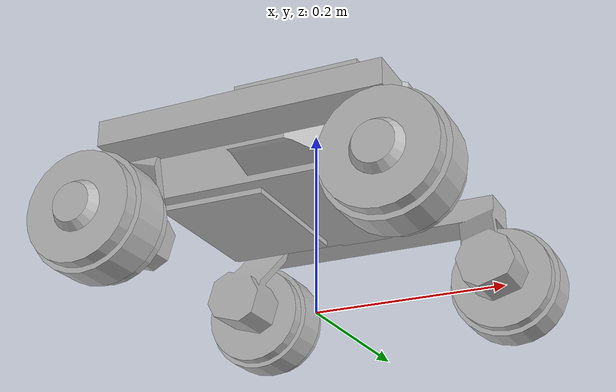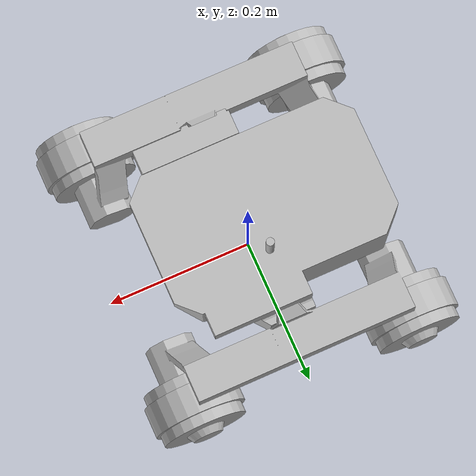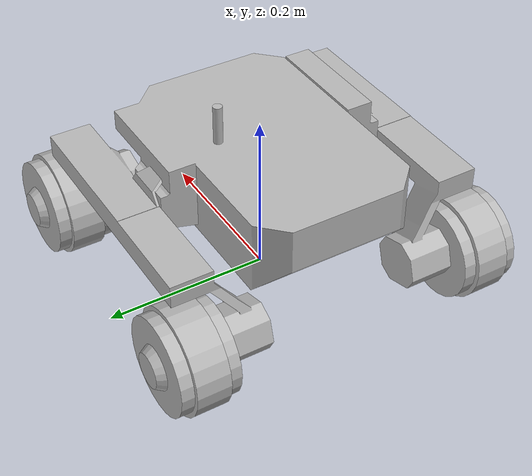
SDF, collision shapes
<sdf version='1.9'>
  <model name='leo_sim'>
    <link name='base_footprint'>
      <inertial>
        <pose>-0.01965072201211552 0.01167759118438614 0.1660702125213793 0 0 0</pose>
        <mass>1.5862309999999999</mass>
        <inertia>
          <ixx>0.01042630889712674</ixx>
          <ixy>0.001176207094533427</ixy>
          <ixz>-0.00088806760314957389</ixz>
          <iyy>0.01045413545998981</iyy>
          <iyz>0.00021963222424937429</iyz>
          <izz>0.018172704009346379</izz>
        </inertia>
      </inertial>
      <collision name='base_footprint_fixed_joint_lump__base_link_collision'>
        <pose>0 0 0.19783 0 0 0</pose>
        <geometry>
          <mesh>
            <scale>1 1 1</scale>
            <uri>model://leo_description/models/Chassis_outline.stl</uri>
          </mesh>
        </geometry>
        <surface>
          <friction>
            <ode>
              <mu>0.29999999999999999</mu>
              <mu2>0.29999999999999999</mu2>
            </ode>
            <bullet>
              <friction>0.29999999999999999</friction>
              <friction2>0.29999999999999999</friction2>
              <rolling_friction>0.10000000000000001</rolling_friction>
            </bullet>
          </friction>
          <contact>
            <ode/>
          </contact>
        </surface>
      </collision>
      <collision name='base_footprint_fixed_joint_lump__antenna_link_collision_1'>
        <pose>-0.0052 0.056 0.21933 0 0 0</pose>
        <geometry>
          <cylinder>
            <length>0.056000000000000001</length>
            <radius>0.0054999999999999997</radius>
          </cylinder>
        </geometry>
      </collision>
      <visual name='base_footprint_fixed_joint_lump__base_link_visual'>
        <pose>0 0 0.19783 0 0 0</pose>
        <geometry>
          <mesh>
            <scale>1 1 1</scale>
            <uri>model://leo_description/models/Chassis.dae</uri>
          </mesh>
        </geometry>
      </visual>
      <visual name='base_footprint_fixed_joint_lump__antenna_link_visual_1'>
        <pose>-0.0052 0.056 0.19133 0 0 0</pose>
        <geometry>
          <mesh>
            <scale>1 1 1</scale>
            <uri>model://leo_description/models/Antenna.dae</uri>
          </mesh>
        </geometry>
      </visual>
      <sensor name='camera' type='camera'>
        <camera name='leo_camera'>
          <horizontal_fov>1.1</horizontal_fov>
          <image>
            <width>640</width>
            <height>480</height>
            <format>R8G8B8</format>
          </image>
          <clip>
            <near>0.050000000000000003</near>
            <far>100</far>
          </clip>
          <noise>
            <type>gaussian</type>
            <mean>0</mean>
            <stddev>0.0070000000000000001</stddev>
          </noise>
          <distortion>
            <k1>-0.27981699999999998</k1>
            <k2>0.060321</k2>
            <k3>0.00048700000000000002</k3>
            <p1>0.00031</p1>
            <p2>0</p2>
            <center>0.5 0.5</center>
          </distortion>
        </camera>
        <always_on>true</always_on>
        <update_rate>30</update_rate>
        <visualize>true</visualize>
        <topic>camera/image_raw</topic>
        <pose>0.1  0 0.2313 0 0 0</pose>
        <ignition_frame_id>camera_optical_frame</ignition_frame_id>
      </sensor>
      <sensor name='leo_imu_sensor' type='imu'>
        <update_rate>100</update_rate>
        <visualize>true</visualize>
        <topic>imu/data_raw</topic>
        <always_on>true</always_on>
        <pose>0.0628 -0.0314 0.15853 0 -0 0</pose>
        <ignition_frame_id>imu_frame</ignition_frame_id>
      </sensor>
    </link>
    <joint name='rocker_L_joint' type='revolute'>
      <pose relative_to='base_footprint'>0.00263 0.14167 0.15052 0 0 3.141592653589793</pose>
      <parent>base_footprint</parent>
      <child>rocker_L_link</child>
      <axis>
        <xyz>0 1 0</xyz>
        <limit>
          <lower>-0.23999999999999999</lower>
          <upper>0.23999999999999999</upper>
          <effort>100</effort>
          <velocity>100</velocity>
        </limit>
        <dynamics>
          <damping>0.10000000000000001</damping>
          <friction>1</friction>
          <spring_reference>0</spring_reference>
          <spring_stiffness>0</spring_stiffness>
        </dynamics>
      </axis>
    </joint>
    <link name='rocker_L_link'>
      <pose relative_to='rocker_L_joint'>0 0 0 0 0 0</pose>
      <inertial>
        <pose>0 0.01346 -0.06506000000000001 0 0 0</pose>
        <mass>1.3873359999999999</mass>
        <inertia>
          <ixx>0.0029559999999999999</ixx>
          <ixy>-1.4893239999999999e-06</ixy>
          <ixz>-8.1034070000000002e-06</ixz>
          <iyy>0.029239999999999999</iyy>
          <iyz>7.1119999999999997e-05</iyz>
          <izz>0.028320000000000001</izz>
        </inertia>
      </inertial>
      <collision name='rocker_L_link_collision'>
        <pose>0 0 0 0 0 0</pose>
        <geometry>
          <mesh>
            <scale>1 1 1</scale>
            <uri>model://leo_description/models/Rocker_outline.stl</uri>
          </mesh>
        </geometry>
        <surface>
          <friction>
            <ode>
              <mu>0.29999999999999999</mu>
              <mu2>0.29999999999999999</mu2>
            </ode>
            <bullet>
              <friction>0.29999999999999999</friction>
              <friction2>0.29999999999999999</friction2>
              <rolling_friction>0.10000000000000001</rolling_friction>
            </bullet>
          </friction>
          <contact>
            <ode/>
          </contact>
        </surface>
      </collision>
      <visual name='rocker_L_link_visual'>
        <pose>0 0 0 0 0 0</pose>
        <geometry>
          <mesh>
            <scale>1 1 1</scale>
            <uri>model://leo_description/models/Rocker.dae</uri>
          </mesh>
        </geometry>
      </visual>
    </link>
    <joint name='wheel_FL_joint' type='revolute'>
      <pose relative_to='rocker_L_link'>-0.15256 -0.08214 -0.08802 0 0 0</pose>
      <parent>rocker_L_link</parent>
      <child>wheel_FL_link</child>
      <axis>
        <xyz>0 -1 0</xyz>
        <limit>
          <effort>2</effort>
          <velocity>6</velocity>
          <lower>-10000000000000000</lower>
          <upper>10000000000000000</upper>
        </limit>
        <dynamics>
          <damping>0.10000000000000001</damping>
          <friction>0.3125</friction>
          <spring_reference>0</spring_reference>
          <spring_stiffness>0</spring_stiffness>
        </dynamics>
      </axis>
    </joint>
    <link name='wheel_FL_link'>
      <pose relative_to='wheel_FL_joint'>0 0 0 0 0 0</pose>
      <inertial>
        <pose>0 0.030026 0 0 0 0</pose>
        <mass>0.28364200000000001</mass>
        <inertia>
          <ixx>0.00039100000000000002</ixx>
          <ixy>1.2396200000000001e-06</ixy>
          <ixz>5.5258200000000004e-07</ixz>
          <iyy>0.00047160000000000002</iyy>
          <iyz>-2.082042e-06</iyz>
          <izz>0.00039100000000000002</izz>
        </inertia>
      </inertial>
      <collision name='wheel_FL_link_collision'>
        <pose>0 0.04485 0 1.570796326794896 0 0</pose>
        <geometry>
          <cylinder>
            <length>0.070000000000000007</length>
            <radius>0.057000000000000002</radius>
          </cylinder>
        </geometry>
        <surface>
          <friction>
            <ode>
              <mu>3</mu>
              <mu2>3</mu2>
              <slip1>0.035000000000000003</slip1>
              <slip2>0</slip2>
              <fdir1>0 0 1</fdir1>
            </ode>
            <bullet>
              <friction>1</friction>
              <friction2>1</friction2>
              <rolling_friction>0.10000000000000001</rolling_friction>
            </bullet>
          </friction>
          <contact>
            <ode/>
          </contact>
        </surface>
      </collision>
      <collision name='wheel_FL_link_collision_1'>
        <pose>0 0.04485 0 1.570796326794896 0 0</pose>
        <geometry>
          <cylinder>
            <length>0.040000000000000001</length>
            <radius>0.0625</radius>
          </cylinder>
        </geometry>
        <surface>
          <friction>
            <ode>
              <mu>3</mu>
              <mu2>3</mu2>
              <slip1>0.035000000000000003</slip1>
              <slip2>0</slip2>
              <fdir1>0 0 1</fdir1>
            </ode>
            <bullet>
              <friction>1</friction>
              <friction2>1</friction2>
              <rolling_friction>0.10000000000000001</rolling_friction>
            </bullet>
          </friction>
          <contact>
            <ode/>
          </contact>
        </surface>
      </collision>
      <collision name='wheel_FL_link_collision_2'>
        <pose>0 0 0 0 0 0</pose>
        <geometry>
          <mesh>
            <scale>1 1 1</scale>
            <uri>model://leo_description/models/Wheel_outline.stl</uri>
          </mesh>
        </geometry>
        <surface>
          <friction>
            <ode>
              <mu>2</mu>
              <mu2>2</mu2>
              <slip1>0.035000000000000003</slip1>
              <slip2>0</slip2>
              <fdir1>0 0 1</fdir1>
            </ode>
            <bullet>
              <friction>1</friction>
              <friction2>1</friction2>
              <rolling_friction>0.10000000000000001</rolling_friction>
            </bullet>
          </friction>
          <contact>
            <ode/>
          </contact>
        </surface>
      </collision>
      <visual name='wheel_FL_link_visual'>
        <pose>0 0 0 0 0 0</pose>
        <geometry>
          <mesh>
            <scale>1 1 1</scale>
            <uri>model://leo_description/models/WheelA.dae</uri>
          </mesh>
        </geometry>
      </visual>
    </link>
    <joint name='wheel_RL_joint' type='revolute'>
      <pose relative_to='rocker_L_link'>0.15256 -0.08214 -0.08802 0 0 0</pose>
      <parent>rocker_L_link</parent>
      <child>wheel_RL_link</child>
      <axis>
        <xyz>0 -1 0</xyz>
        <limit>
          <effort>2</effort>
          <velocity>6</velocity>
          <lower>-10000000000000000</lower>
          <upper>10000000000000000</upper>
        </limit>
        <dynamics>
          <damping>0.10000000000000001</damping>
          <friction>0.3125</friction>
          <spring_reference>0</spring_reference>
          <spring_stiffness>0</spring_stiffness>
        </dynamics>
      </axis>
    </joint>
    <link name='wheel_RL_link'>
      <pose relative_to='wheel_RL_joint'>0 0 0 0 0 0</pose>
      <inertial>
        <pose>0 0.030026 0 0 0 0</pose>
        <mass>0.28364200000000001</mass>
        <inertia>
          <ixx>0.00039100000000000002</ixx>
          <ixy>1.2396200000000001e-06</ixy>
          <ixz>5.5258200000000004e-07</ixz>
          <iyy>0.00047160000000000002</iyy>
          <iyz>-2.082042e-06</iyz>
          <izz>0.00039100000000000002</izz>
        </inertia>
      </inertial>
      <collision name='wheel_RL_link_collision'>
        <pose>0 0.04485 0 1.570796326794896 0 0</pose>
        <geometry>
          <cylinder>
            <length>0.070000000000000007</length>
            <radius>0.057000000000000002</radius>
          </cylinder>
        </geometry>
        <surface>
          <friction>
            <ode>
              <mu>3</mu>
              <mu2>3</mu2>
              <slip1>0.035000000000000003</slip1>
              <slip2>0</slip2>
              <fdir1>0 0 1</fdir1>
            </ode>
            <bullet>
              <friction>1</friction>
              <friction2>1</friction2>
              <rolling_friction>0.10000000000000001</rolling_friction>
            </bullet>
          </friction>
          <contact>
            <ode/>
          </contact>
        </surface>
      </collision>
      <collision name='wheel_RL_link_collision_1'>
        <pose>0 0.04485 0 1.570796326794896 0 0</pose>
        <geometry>
          <cylinder>
            <length>0.040000000000000001</length>
            <radius>0.0625</radius>
          </cylinder>
        </geometry>
        <surface>
          <friction>
            <ode>
              <mu>3</mu>
              <mu2>3</mu2>
              <slip1>0.035000000000000003</slip1>
              <slip2>0</slip2>
              <fdir1>0 0 1</fdir1>
            </ode>
            <bullet>
              <friction>1</friction>
              <friction2>1</friction2>
              <rolling_friction>0.10000000000000001</rolling_friction>
            </bullet>
          </friction>
          <contact>
            <ode/>
          </contact>
        </surface>
      </collision>
      <collision name='wheel_RL_link_collision_2'>
        <pose>0 0 0 0 0 0</pose>
        <geometry>
          <mesh>
            <scale>1 1 1</scale>
            <uri>model://leo_description/models/Wheel_outline.stl</uri>
          </mesh>
        </geometry>
        <surface>
          <friction>
            <ode>
              <mu>3</mu>
              <mu2>3</mu2>
              <slip1>0.035000000000000003</slip1>
              <slip2>0</slip2>
              <fdir1>0 0 1</fdir1>
            </ode>
            <bullet>
              <friction>1</friction>
              <friction2>1</friction2>
              <rolling_friction>0.10000000000000001</rolling_friction>
            </bullet>
          </friction>
          <contact>
            <ode/>
          </contact>
        </surface>
      </collision>
      <visual name='wheel_RL_link_visual'>
        <pose>0 0 0 0 0 0</pose>
        <geometry>
          <mesh>
            <scale>1 1 1</scale>
            <uri>model://leo_description/models/WheelA.dae</uri>
          </mesh>
        </geometry>
      </visual>
    </link>
    <joint name='rocker_R_joint' type='revolute'>
      <pose relative_to='base_footprint'>0.00263 -0.14167 0.15052 0 0 0</pose>
      <parent>base_footprint</parent>
      <child>rocker_R_link</child>
      <axis>
        <xyz>0 1 0</xyz>
        <limit>
          <lower>-0.23999999999999999</lower>
          <upper>0.23999999999999999</upper>
          <effort>100</effort>
          <velocity>100</velocity>
        </limit>
        <dynamics>
          <damping>0.10000000000000001</damping>
          <friction>1</friction>
          <spring_reference>0</spring_reference>
          <spring_stiffness>0</spring_stiffness>
        </dynamics>
      </axis>
    </joint>
    <link name='rocker_R_link'>
      <pose relative_to='rocker_R_joint'>0 0 0 0 0 0</pose>
      <inertial>
        <pose>0 0.01346 -0.06506000000000001 0 0 0</pose>
        <mass>1.3873359999999999</mass>
        <inertia>
          <ixx>0.0029559999999999999</ixx>
          <ixy>-1.4893239999999999e-06</ixy>
          <ixz>-8.1034070000000002e-06</ixz>
          <iyy>0.029239999999999999</iyy>
          <iyz>7.1119999999999997e-05</iyz>
          <izz>0.028320000000000001</izz>
        </inertia>
      </inertial>
      <collision name='rocker_R_link_collision'>
        <pose>0 0 0 0 0 0</pose>
        <geometry>
          <mesh>
            <scale>1 1 1</scale>
            <uri>model://leo_description/models/Rocker_outline.stl</uri>
          </mesh>
        </geometry>
        <surface>
          <friction>
            <ode>
              <mu>0.29999999999999999</mu>
              <mu2>0.29999999999999999</mu2>
            </ode>
            <bullet>
              <friction>0.29999999999999999</friction>
              <friction2>0.29999999999999999</friction2>
              <rolling_friction>0.10000000000000001</rolling_friction>
            </bullet>
          </friction>
          <contact>
            <ode/>
          </contact>
        </surface>
      </collision>
      <visual name='rocker_R_link_visual'>
        <pose>0 0 0 0 0 0</pose>
        <geometry>
          <mesh>
            <scale>1 1 1</scale>
            <uri>model://leo_description/models/Rocker.dae</uri>
          </mesh>
        </geometry>
      </visual>
    </link>
    <joint name='wheel_FR_joint' type='revolute'>
      <pose relative_to='rocker_R_link'>0.15256 -0.08214 -0.08802 0 0 0</pose>
      <parent>rocker_R_link</parent>
      <child>wheel_FR_link</child>
      <axis>
        <xyz>0 1 0</xyz>
        <limit>
          <effort>2</effort>
          <velocity>6</velocity>
          <lower>-10000000000000000</lower>
          <upper>10000000000000000</upper>
        </limit>
        <dynamics>
          <damping>0.10000000000000001</damping>
          <friction>0.3125</friction>
          <spring_reference>0</spring_reference>
          <spring_stiffness>0</spring_stiffness>
        </dynamics>
      </axis>
    </joint>
    <link name='wheel_FR_link'>
      <pose relative_to='wheel_FR_joint'>0 0 0 0 0 0</pose>
      <inertial>
        <pose>0 0.030026 0 0 0 0</pose>
        <mass>0.28364200000000001</mass>
        <inertia>
          <ixx>0.00039100000000000002</ixx>
          <ixy>1.2396200000000001e-06</ixy>
          <ixz>5.5258200000000004e-07</ixz>
          <iyy>0.00047160000000000002</iyy>
          <iyz>-2.082042e-06</iyz>
          <izz>0.00039100000000000002</izz>
        </inertia>
      </inertial>
      <collision name='wheel_FR_link_collision'>
        <pose>0 0.04485 0 1.570796326794896 0 0</pose>
        <geometry>
          <cylinder>
            <length>0.070000000000000007</length>
            <radius>0.057000000000000002</radius>
          </cylinder>
        </geometry>
        <surface>
          <friction>
            <ode>
              <mu>3</mu>
              <mu2>3</mu2>
              <slip1>0.035000000000000003</slip1>
              <slip2>0</slip2>
              <fdir1>0 0 1</fdir1>
            </ode>
            <bullet>
              <friction>1</friction>
              <friction2>1</friction2>
              <rolling_friction>0.10000000000000001</rolling_friction>
            </bullet>
          </friction>
          <contact>
            <ode/>
          </contact>
        </surface>
      </collision>
      <collision name='wheel_FR_link_collision_1'>
        <pose>0 0.04485 0 1.570796326794896 0 0</pose>
        <geometry>
          <cylinder>
            <length>0.040000000000000001</length>
            <radius>0.0625</radius>
          </cylinder>
        </geometry>
        <surface>
          <friction>
            <ode>
              <mu>3</mu>
              <mu2>3</mu2>
              <slip1>0.035000000000000003</slip1>
              <slip2>0</slip2>
              <fdir1>0 0 1</fdir1>
            </ode>
            <bullet>
              <friction>1</friction>
              <friction2>1</friction2>
              <rolling_friction>0.10000000000000001</rolling_friction>
            </bullet>
          </friction>
          <contact>
            <ode/>
          </contact>
        </surface>
      </collision>
      <collision name='wheel_FR_link_collision_2'>
        <pose>0 0 0 0 0 0</pose>
        <geometry>
          <mesh>
            <scale>1 1 1</scale>
            <uri>model://leo_description/models/Wheel_outline.stl</uri>
          </mesh>
        </geometry>
        <surface>
          <friction>
            <ode>
              <mu>3</mu>
              <mu2>3</mu2>
              <slip1>0.035000000000000003</slip1>
              <slip2>0</slip2>
              <fdir1>0 0 1</fdir1>
            </ode>
            <bullet>
              <friction>1</friction>
              <friction2>1</friction2>
              <rolling_friction>0.10000000000000001</rolling_friction>
            </bullet>
          </friction>
          <contact>
            <ode/>
          </contact>
        </surface>
      </collision>
      <visual name='wheel_FR_link_visual'>
        <pose>0 0 0 0 0 0</pose>
        <geometry>
          <mesh>
            <scale>1 1 1</scale>
            <uri>model://leo_description/models/WheelB.dae</uri>
          </mesh>
        </geometry>
      </visual>
    </link>
    <joint name='wheel_RR_joint' type='revolute'>
      <pose relative_to='rocker_R_link'>-0.15256 -0.08214 -0.08802 0 0 0</pose>
      <parent>rocker_R_link</parent>
      <child>wheel_RR_link</child>
      <axis>
        <xyz>0 1 0</xyz>
        <limit>
          <effort>2</effort>
          <velocity>6</velocity>
          <lower>-10000000000000000</lower>
          <upper>10000000000000000</upper>
        </limit>
        <dynamics>
          <damping>0.10000000000000001</damping>
          <friction>0.3125</friction>
          <spring_reference>0</spring_reference>
          <spring_stiffness>0</spring_stiffness>
        </dynamics>
      </axis>
    </joint>
    <link name='wheel_RR_link'>
      <pose relative_to='wheel_RR_joint'>0 0 0 0 0 0</pose>
      <inertial>
        <pose>0 0.030026 0 0 0 0</pose>
        <mass>0.28364200000000001</mass>
        <inertia>
          <ixx>0.00039100000000000002</ixx>
          <ixy>1.2396200000000001e-06</ixy>
          <ixz>5.5258200000000004e-07</ixz>
          <iyy>0.00047160000000000002</iyy>
          <iyz>-2.082042e-06</iyz>
          <izz>0.00039100000000000002</izz>
        </inertia>
      </inertial>
      <collision name='wheel_RR_link_collision'>
        <pose>0 0.04485 0 1.570796326794896 0 0</pose>
        <geometry>
          <cylinder>
            <length>0.070000000000000007</length>
            <radius>0.057000000000000002</radius>
          </cylinder>
        </geometry>
        <surface>
          <friction>
            <ode>
              <mu>3</mu>
              <mu2>3</mu2>
              <slip1>0.035000000000000003</slip1>
              <slip2>0</slip2>
              <fdir1>0 0 1</fdir1>
            </ode>
            <bullet>
              <friction>1</friction>
              <friction2>1</friction2>
              <rolling_friction>0.10000000000000001</rolling_friction>
            </bullet>
          </friction>
          <contact>
            <ode/>
          </contact>
        </surface>
      </collision>
      <collision name='wheel_RR_link_collision_1'>
        <pose>0 0.04485 0 1.570796326794896 0 0</pose>
        <geometry>
          <cylinder>
            <length>0.040000000000000001</length>
            <radius>0.0625</radius>
          </cylinder>
        </geometry>
        <surface>
          <friction>
            <ode>
              <mu>3</mu>
              <mu2>3</mu2>
              <slip1>0.035000000000000003</slip1>
              <slip2>0</slip2>
              <fdir1>0 0 1</fdir1>
            </ode>
            <bullet>
              <friction>1</friction>
              <friction2>1</friction2>
              <rolling_friction>0.10000000000000001</rolling_friction>
            </bullet>
          </friction>
          <contact>
            <ode/>
          </contact>
        </surface>
      </collision>
      <collision name='wheel_RR_link_collision_2'>
        <pose>0 0 0 0 0 0</pose>
        <geometry>
          <mesh>
            <scale>1 1 1</scale>
            <uri>model://leo_description/models/Wheel_outline.stl</uri>
          </mesh>
        </geometry>
        <surface>
          <friction>
            <ode>
              <mu>3</mu>
              <mu2>3</mu2>
              <slip1>0.035000000000000003</slip1>
              <slip2>0</slip2>
              <fdir1>0 0 1</fdir1>
            </ode>
            <bullet>
              <friction>1</friction>
              <friction2>1</friction2>
              <rolling_friction>0.10000000000000001</rolling_friction>
            </bullet>
          </friction>
          <contact>
            <ode/>
          </contact>
        </surface>
      </collision>
      <visual name='wheel_RR_link_visual'>
        <pose>0 0 0 0 0 0</pose>
        <geometry>
          <mesh>
            <scale>1 1 1</scale>
            <uri>model://leo_description/models/WheelB.dae</uri>
          </mesh>
        </geometry>
      </visual>
    </link>
    <plugin name='leo_gz::DifferentialSystem' filename='libleo_gz_differential_plugin.so'>
      <jointA>rocker_L_joint</jointA>
      <jointB>rocker_R_joint</jointB>
      <forceConstant>100.0</forceConstant>
    </plugin>
    <plugin name='gz::sim::systems::JointStatePublisher' filename='libgz-sim-joint-state-publisher-system.so'>
      <topic>joint_states</topic>
    </plugin>
    <plugin name='gz::sim::systems::DiffDrive' filename='libgz-sim-diff-drive-system.so'>
      <left_joint>wheel_FL_joint</left_joint>
      <right_joint>wheel_FR_joint</right_joint>
      <left_joint>wheel_RL_joint</left_joint>
      <right_joint>wheel_RR_joint</right_joint>
      <wheel_separation>0.358</wheel_separation>
      <wheel_radius>0.0625</wheel_radius>
      <frame_id>odom</frame_id>
      <child_frame_id>base_footprint</child_frame_id>
      <odom_publish_frequency>20</odom_publish_frequency>
      <topic>cmd_vel</topic>
      <odom_topic>odom</odom_topic>
      <tf_topic>tf</tf_topic>
      <max_linear_acceleration>2.5</max_linear_acceleration>
      <max_angular_acceleration>3</max_angular_acceleration>
      <min_linear_acceleration>-2.5</min_linear_acceleration>
      <min_angular_acceleration>-3</min_angular_acceleration>
    </plugin>
    <plugin name="gz::sim::systems::Sensors" filename="libgz-sim-sensors-system.so">
      <render_engine>ogre2</render_engine>
    </plugin>
    <frame name='antenna_joint' attached_to='base_link'>
      <pose>-0.0052 0.056 -0.0065 0 -0 0</pose>
    </frame>
    <frame name='antenna_link' attached_to='antenna_joint'/>
    <frame name='camera_optical_joint' attached_to='camera_frame'>
      <pose>0 0 0 -1.5708 -0 -1.5708</pose>
    </frame>
    <frame name='camera_optical_frame' attached_to='camera_optical_joint'/>
    <frame name='camera_joint' attached_to='base_link'>
      <pose>0.0971 0 -0.0427 0 0.2094 0</pose>
    </frame>
    <frame name='camera_frame' attached_to='camera_joint'/>
    <frame name='imu_joint' attached_to='base_link'>
      <pose>0.0628 -0.0314 -0.0393 0 -0 0</pose>
    </frame>
    <frame name='imu_frame' attached_to='imu_joint'/>
    <frame name='base_joint' attached_to='base_footprint'>
      <pose>0 0 0.19783 0 -0 0</pose>
    </frame>
    <frame name='base_link' attached_to='base_joint'/>
  </model>
</sdf>
